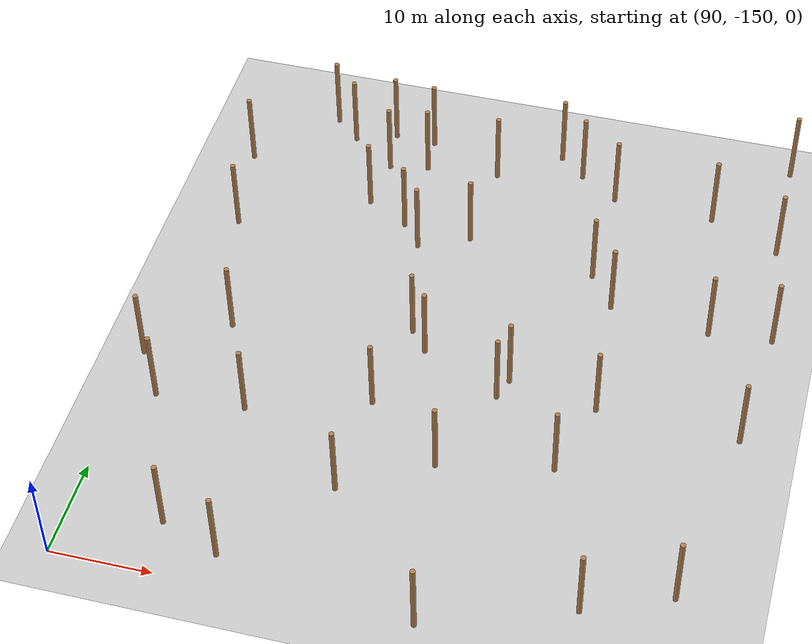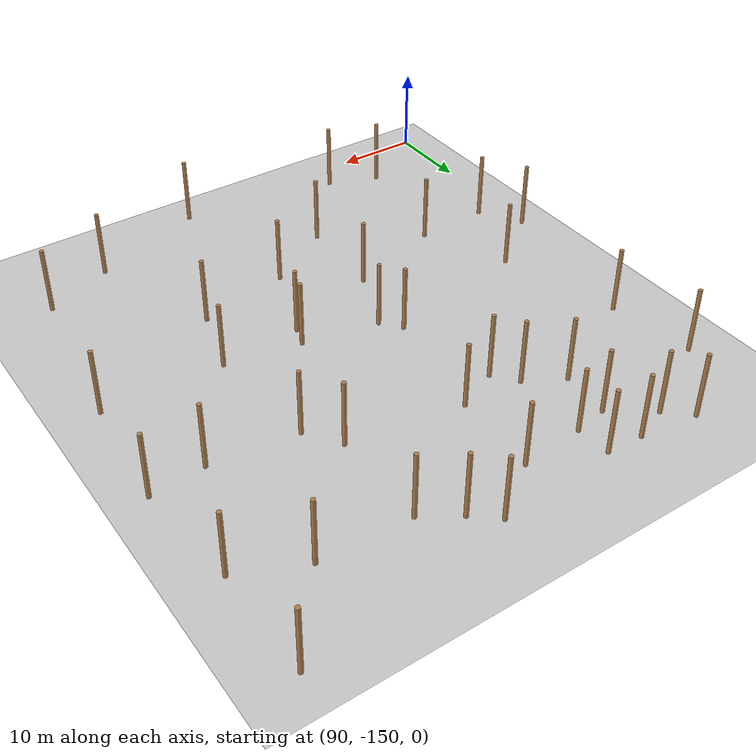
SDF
<sdf version="1.5">
 <world name="padure_tactica">
  <include><uri>model://sun</uri></include>
  <include><uri>model://ground_plane</uri></include>
  <model name="tree_6">
   <static>true</static>
   <pose>143.14 -109.33 4.0 0 0 0</pose>
   <link name="link">
    <collision name="collision">
     <geometry><cylinder><radius>0.25</radius><length>8.0</length></cylinder></geometry>
    </collision>
    <visual name="visual">
     <geometry><cylinder><radius>0.25</radius><length>8.0</length></cylinder></geometry>
     <material>
      <script><uri>file://media/materials/scripts/gazebo.material</uri><name>Gazebo/Wood</name></script>
     </material>
    </visual>
   </link>
  </model>
  <model name="tree_8">
   <static>true</static>
   <pose>147.84 -84.51 4.0 0 0 0</pose>
   <link name="link">
    <collision name="collision">
     <geometry><cylinder><radius>0.25</radius><length>8.0</length></cylinder></geometry>
    </collision>
    <visual name="visual">
     <geometry><cylinder><radius>0.25</radius><length>8.0</length></cylinder></geometry>
     <material>
      <script><uri>file://media/materials/scripts/gazebo.material</uri><name>Gazebo/Wood</name></script>
     </material>
    </visual>
   </link>
  </model>
  <model name="tree_10">
   <static>true</static>
   <pose>133.14 -108.15 4.0 0 0 0</pose>
   <link name="link">
    <collision name="collision">
     <geometry><cylinder><radius>0.25</radius><length>8.0</length></cylinder></geometry>
    </collision>
    <visual name="visual">
     <geometry><cylinder><radius>0.25</radius><length>8.0</length></cylinder></geometry>
     <material>
      <script><uri>file://media/materials/scripts/gazebo.material</uri><name>Gazebo/Wood</name></script>
     </material>
    </visual>
   </link>
  </model>
  <model name="tree_78">
   <static>true</static>
   <pose>109.97 -89.08 4.0 0 0 0</pose>
   <link name="link">
    <collision name="collision">
     <geometry><cylinder><radius>0.25</radius><length>8.0</length></cylinder></geometry>
    </collision>
    <visual name="visual">
     <geometry><cylinder><radius>0.25</radius><length>8.0</length></cylinder></geometry>
     <material>
      <script><uri>file://media/materials/scripts/gazebo.material</uri><name>Gazebo/Wood</name></script>
     </material>
    </visual>
   </link>
  </model>
  <model name="tree_96">
   <static>true</static>
   <pose>90.10 -125.28 4.0 0 0 0</pose>
   <link name="link">
    <collision name="collision">
     <geometry><cylinder><radius>0.25</radius><length>8.0</length></cylinder></geometry>
    </collision>
    <visual name="visual">
     <geometry><cylinder><radius>0.25</radius><length>8.0</length></cylinder></geometry>
     <material>
      <script><uri>file://media/materials/scripts/gazebo.material</uri><name>Gazebo/Wood</name></script>
     </material>
    </visual>
   </link>
  </model>
  <model name="tree_170">
   <static>true</static>
   <pose>145.55 -141.21 4.0 0 0 0</pose>
   <link name="link">
    <collision name="collision">
     <geometry><cylinder><radius>0.25</radius><length>8.0</length></cylinder></geometry>
    </collision>
    <visual name="visual">
     <geometry><cylinder><radius>0.25</radius><length>8.0</length></cylinder></geometry>
     <material>
      <script><uri>file://media/materials/scripts/gazebo.material</uri><name>Gazebo/Wood</name></script>
     </material>
    </visual>
   </link>
  </model>
  <model name="tree_218">
   <static>true</static>
   <pose>125.57 -120.15 4.0 0 0 0</pose>
   <link name="link">
    <collision name="collision">
     <geometry><cylinder><radius>0.25</radius><length>8.0</length></cylinder></geometry>
    </collision>
    <visual name="visual">
     <geometry><cylinder><radius>0.25</radius><length>8.0</length></cylinder></geometry>
     <material>
      <script><uri>file://media/materials/scripts/gazebo.material</uri><name>Gazebo/Wood</name></script>
     </material>
    </visual>
   </link>
  </model>
  <model name="tree_249">
   <static>true</static>
   <pose>140.88 -93.34 4.0 0 0 0</pose>
   <link name="link">
    <collision name="collision">
     <geometry><cylinder><radius>0.25</radius><length>8.0</length></cylinder></geometry>
    </collision>
    <visual name="visual">
     <geometry><cylinder><radius>0.25</radius><length>8.0</length></cylinder></geometry>
     <material>
      <script><uri>file://media/materials/scripts/gazebo.material</uri><name>Gazebo/Wood</name></script>
     </material>
    </visual>
   </link>
  </model>
  <model name="tree_258">
   <static>true</static>
   <pose>148.06 -96.52 4.0 0 0 0</pose>
   <link name="link">
    <collision name="collision">
     <geometry><cylinder><radius>0.25</radius><length>8.0</length></cylinder></geometry>
    </collision>
    <visual name="visual">
     <geometry><cylinder><radius>0.25</radius><length>8.0</length></cylinder></geometry>
     <material>
      <script><uri>file://media/materials/scripts/gazebo.material</uri><name>Gazebo/Wood</name></script>
     </material>
    </visual>
   </link>
  </model>
  <model name="tree_319">
   <static>true</static>
   <pose>112.22 -104.54 4.0 0 0 0</pose>
   <link name="link">
    <collision name="collision">
     <geometry><cylinder><radius>0.25</radius><length>8.0</length></cylinder></geometry>
    </collision>
    <visual name="visual">
     <geometry><cylinder><radius>0.25</radius><length>8.0</length></cylinder></geometry>
     <material>
      <script><uri>file://media/materials/scripts/gazebo.material</uri><name>Gazebo/Wood</name></script>
     </material>
    </visual>
   </link>
  </model>
  <model name="tree_337">
   <static>true</static>
   <pose>93.29 -105.76 4.0 0 0 0</pose>
   <link name="link">
    <collision name="collision">
     <geometry><cylinder><radius>0.25</radius><length>8.0</length></cylinder></geometry>
    </collision>
    <visual name="visual">
     <geometry><cylinder><radius>0.25</radius><length>8.0</length></cylinder></geometry>
     <material>
      <script><uri>file://media/materials/scripts/gazebo.material</uri><name>Gazebo/Wood</name></script>
     </material>
    </visual>
   </link>
  </model>
  <model name="tree_355">
   <static>true</static>
   <pose>134.40 -121.68 4.0 0 0 0</pose>
   <link name="link">
    <collision name="collision">
     <geometry><cylinder><radius>0.25</radius><length>8.0</length></cylinder></geometry>
    </collision>
    <visual name="visual">
     <geometry><cylinder><radius>0.25</radius><length>8.0</length></cylinder></geometry>
     <material>
      <script><uri>file://media/materials/scripts/gazebo.material</uri><name>Gazebo/Wood</name></script>
     </material>
    </visual>
   </link>
  </model>
  <model name="tree_394">
   <static>true</static>
   <pose>104.84 -146.69 4.0 0 0 0</pose>
   <link name="link">
    <collision name="collision">
     <geometry><cylinder><radius>0.25</radius><length>8.0</length></cylinder></geometry>
    </collision>
    <visual name="visual">
     <geometry><cylinder><radius>0.25</radius><length>8.0</length></cylinder></geometry>
     <material>
      <script><uri>file://media/materials/scripts/gazebo.material</uri><name>Gazebo/Wood</name></script>
     </material>
    </visual>
   </link>
  </model>
  <model name="tree_470">
   <static>true</static>
   <pose>101.91 -129.75 4.0 0 0 0</pose>
   <link name="link">
    <collision name="collision">
     <geometry><cylinder><radius>0.25</radius><length>8.0</length></cylinder></geometry>
    </collision>
    <visual name="visual">
     <geometry><cylinder><radius>0.25</radius><length>8.0</length></cylinder></geometry>
     <material>
      <script><uri>file://media/materials/scripts/gazebo.material</uri><name>Gazebo/Wood</name></script>
     </material>
    </visual>
   </link>
  </model>
  <model name="tree_497">
   <static>true</static>
   <pose>149.39 -108.77 4.0 0 0 0</pose>
   <link name="link">
    <collision name="collision">
     <geometry><cylinder><radius>0.25</radius><length>8.0</length></cylinder></geometry>
    </collision>
    <visual name="visual">
     <geometry><cylinder><radius>0.25</radius><length>8.0</length></cylinder></geometry>
     <material>
      <script><uri>file://media/materials/scripts/gazebo.material</uri><name>Gazebo/Wood</name></script>
     </material>
    </visual>
   </link>
  </model>
  <model name="tree_557">
   <static>true</static>
   <pose>106.33 -93.77 4.0 0 0 0</pose>
   <link name="link">
    <collision name="collision">
     <geometry><cylinder><radius>0.25</radius><length>8.0</length></cylinder></geometry>
    </collision>
    <visual name="visual">
     <geometry><cylinder><radius>0.25</radius><length>8.0</length></cylinder></geometry>
     <material>
      <script><uri>file://media/materials/scripts/gazebo.material</uri><name>Gazebo/Wood</name></script>
     </material>
    </visual>
   </link>
  </model>
  <model name="tree_585">
   <static>true</static>
   <pose>123.86 -87.98 4.0 0 0 0</pose>
   <link name="link">
    <collision name="collision">
     <geometry><cylinder><radius>0.25</radius><length>8.0</length></cylinder></geometry>
    </collision>
    <visual name="visual">
     <geometry><cylinder><radius>0.25</radius><length>8.0</length></cylinder></geometry>
     <material>
      <script><uri>file://media/materials/scripts/gazebo.material</uri><name>Gazebo/Wood</name></script>
     </material>
    </visual>
   </link>
  </model>
  <model name="tree_606">
   <static>true</static>
   <pose>114.85 -116.16 4.0 0 0 0</pose>
   <link name="link">
    <collision name="collision">
     <geometry><cylinder><radius>0.25</radius><length>8.0</length></cylinder></geometry>
    </collision>
    <visual name="visual">
     <geometry><cylinder><radius>0.25</radius><length>8.0</length></cylinder></geometry>
     <material>
      <script><uri>file://media/materials/scripts/gazebo.material</uri><name>Gazebo/Wood</name></script>
     </material>
    </visual>
   </link>
  </model>
  <model name="tree_624">
   <static>true</static>
   <pose>98.97 -87.98 4.0 0 0 0</pose>
   <link name="link">
    <collision name="collision">
     <geometry><cylinder><radius>0.25</radius><length>8.0</length></cylinder></geometry>
    </collision>
    <visual name="visual">
     <geometry><cylinder><radius>0.25</radius><length>8.0</length></cylinder></geometry>
     <material>
      <script><uri>file://media/materials/scripts/gazebo.material</uri><name>Gazebo/Wood</name></script>
     </material>
    </visual>
   </link>
  </model>
  <model name="tree_634">
   <static>true</static>
   <pose>105.77 -99.49 4.0 0 0 0</pose>
   <link name="link">
    <collision name="collision">
     <geometry><cylinder><radius>0.25</radius><length>8.0</length></cylinder></geometry>
    </collision>
    <visual name="visual">
     <geometry><cylinder><radius>0.25</radius><length>8.0</length></cylinder></geometry>
     <material>
      <script><uri>file://media/materials/scripts/gazebo.material</uri><name>Gazebo/Wood</name></script>
     </material>
    </visual>
   </link>
  </model>
  <model name="tree_662">
   <static>true</static>
   <pose>126.54 -90.28 4.0 0 0 0</pose>
   <link name="link">
    <collision name="collision">
     <geometry><cylinder><radius>0.25</radius><length>8.0</length></cylinder></geometry>
    </collision>
    <visual name="visual">
     <geometry><cylinder><radius>0.25</radius><length>8.0</length></cylinder></geometry>
     <material>
      <script><uri>file://media/materials/scripts/gazebo.material</uri><name>Gazebo/Wood</name></script>
     </material>
    </visual>
   </link>
  </model>
  <model name="tree_671">
   <static>true</static>
   <pose>98.98 -144.41 4.0 0 0 0</pose>
   <link name="link">
    <collision name="collision">
     <geometry><cylinder><radius>0.25</radius><length>8.0</length></cylinder></geometry>
    </collision>
    <visual name="visual">
     <geometry><cylinder><radius>0.25</radius><length>8.0</length></cylinder></geometry>
     <material>
      <script><uri>file://media/materials/scripts/gazebo.material</uri><name>Gazebo/Wood</name></script>
     </material>
    </visual>
   </link>
  </model>
  <model name="tree_679">
   <static>true</static>
   <pose>110.27 -93.00 4.0 0 0 0</pose>
   <link name="link">
    <collision name="collision">
     <geometry><cylinder><radius>0.25</radius><length>8.0</length></cylinder></geometry>
    </collision>
    <visual name="visual">
     <geometry><cylinder><radius>0.25</radius><length>8.0</length></cylinder></geometry>
     <material>
      <script><uri>file://media/materials/scripts/gazebo.material</uri><name>Gazebo/Wood</name></script>
     </material>
    </visual>
   </link>
  </model>
  <model name="tree_703">
   <static>true</static>
   <pose>121.26 -131.96 4.0 0 0 0</pose>
   <link name="link">
    <collision name="collision">
     <geometry><cylinder><radius>0.25</radius><length>8.0</length></cylinder></geometry>
    </collision>
    <visual name="visual">
     <geometry><cylinder><radius>0.25</radius><length>8.0</length></cylinder></geometry>
     <material>
      <script><uri>file://media/materials/scripts/gazebo.material</uri><name>Gazebo/Wood</name></script>
     </material>
    </visual>
   </link>
  </model>
  <model name="tree_743">
   <static>true</static>
   <pose>101.61 -90.43 4.0 0 0 0</pose>
   <link name="link">
    <collision name="collision">
     <geometry><cylinder><radius>0.25</radius><length>8.0</length></cylinder></geometry>
    </collision>
    <visual name="visual">
     <geometry><cylinder><radius>0.25</radius><length>8.0</length></cylinder></geometry>
     <material>
      <script><uri>file://media/materials/scripts/gazebo.material</uri><name>Gazebo/Wood</name></script>
     </material>
    </visual>
   </link>
  </model>
  <model name="tree_799">
   <static>true</static>
   <pose>130.49 -104.38 4.0 0 0 0</pose>
   <link name="link">
    <collision name="collision">
     <geometry><cylinder><radius>0.25</radius><length>8.0</length></cylinder></geometry>
    </collision>
    <visual name="visual">
     <geometry><cylinder><radius>0.25</radius><length>8.0</length></cylinder></geometry>
     <material>
      <script><uri>file://media/materials/scripts/gazebo.material</uri><name>Gazebo/Wood</name></script>
     </material>
    </visual>
   </link>
  </model>
  <model name="tree_846">
   <static>true</static>
   <pose>137.60 -144.61 4.0 0 0 0</pose>
   <link name="link">
    <collision name="collision">
     <geometry><cylinder><radius>0.25</radius><length>8.0</length></cylinder></geometry>
    </collision>
    <visual name="visual">
     <geometry><cylinder><radius>0.25</radius><length>8.0</length></cylinder></geometry>
     <material>
      <script><uri>file://media/materials/scripts/gazebo.material</uri><name>Gazebo/Wood</name></script>
     </material>
    </visual>
   </link>
  </model>
  <model name="tree_861">
   <static>true</static>
   <pose>113.02 -136.87 4.0 0 0 0</pose>
   <link name="link">
    <collision name="collision">
     <geometry><cylinder><radius>0.25</radius><length>8.0</length></cylinder></geometry>
    </collision>
    <visual name="visual">
     <geometry><cylinder><radius>0.25</radius><length>8.0</length></cylinder></geometry>
     <material>
      <script><uri>file://media/materials/scripts/gazebo.material</uri><name>Gazebo/Wood</name></script>
     </material>
    </visual>
   </link>
  </model>
  <model name="tree_889">
   <static>true</static>
   <pose>132.11 -129.68 4.0 0 0 0</pose>
   <link name="link">
    <collision name="collision">
     <geometry><cylinder><radius>0.25</radius><length>8.0</length></cylinder></geometry>
    </collision>
    <visual name="visual">
     <geometry><cylinder><radius>0.25</radius><length>8.0</length></cylinder></geometry>
     <material>
      <script><uri>file://media/materials/scripts/gazebo.material</uri><name>Gazebo/Wood</name></script>
     </material>
    </visual>
   </link>
  </model>
  <model name="tree_919">
   <static>true</static>
   <pose>117.21 -102.27 4.0 0 0 0</pose>
   <link name="link">
    <collision name="collision">
     <geometry><cylinder><radius>0.25</radius><length>8.0</length></cylinder></geometry>
    </collision>
    <visual name="visual">
     <geometry><cylinder><radius>0.25</radius><length>8.0</length></cylinder></geometry>
     <material>
      <script><uri>file://media/materials/scripts/gazebo.material</uri><name>Gazebo/Wood</name></script>
     </material>
    </visual>
   </link>
  </model>
  <model name="tree_977">
   <static>true</static>
   <pose>148.26 -122.09 4.0 0 0 0</pose>
   <link name="link">
    <collision name="collision">
     <geometry><cylinder><radius>0.25</radius><length>8.0</length></cylinder></geometry>
    </collision>
    <visual name="visual">
     <geometry><cylinder><radius>0.25</radius><length>8.0</length></cylinder></geometry>
     <material>
      <script><uri>file://media/materials/scripts/gazebo.material</uri><name>Gazebo/Wood</name></script>
     </material>
    </visual>
   </link>
  </model>
  <model name="tree_1019">
   <static>true</static>
   <pose>123.95 -149.55 4.0 0 0 0</pose>
   <link name="link">
    <collision name="collision">
     <geometry><cylinder><radius>0.25</radius><length>8.0</length></cylinder></geometry>
    </collision>
    <visual name="visual">
     <geometry><cylinder><radius>0.25</radius><length>8.0</length></cylinder></geometry>
     <material>
      <script><uri>file://media/materials/scripts/gazebo.material</uri><name>Gazebo/Wood</name></script>
     </material>
    </visual>
   </link>
  </model>
  <model name="tree_1034">
   <static>true</static>
   <pose>124.83 -122.41 4.0 0 0 0</pose>
   <link name="link">
    <collision name="collision">
     <geometry><cylinder><radius>0.25</radius><length>8.0</length></cylinder></geometry>
    </collision>
    <visual name="visual">
     <geometry><cylinder><radius>0.25</radius><length>8.0</length></cylinder></geometry>
     <material>
      <script><uri>file://media/materials/scripts/gazebo.material</uri><name>Gazebo/Wood</name></script>
     </material>
    </visual>
   </link>
  </model>
  <model name="tree_1039">
   <static>true</static>
   <pose>110.14 -101.91 4.0 0 0 0</pose>
   <link name="link">
    <collision name="collision">
     <geometry><cylinder><radius>0.25</radius><length>8.0</length></cylinder></geometry>
    </collision>
    <visual name="visual">
     <geometry><cylinder><radius>0.25</radius><length>8.0</length></cylinder></geometry>
     <material>
      <script><uri>file://media/materials/scripts/gazebo.material</uri><name>Gazebo/Wood</name></script>
     </material>
    </visual>
   </link>
  </model>
  <model name="tree_1046">
   <static>true</static>
   <pose>113.50 -126.03 4.0 0 0 0</pose>
   <link name="link">
    <collision name="collision">
     <geometry><cylinder><radius>0.25</radius><length>8.0</length></cylinder></geometry>
    </collision>
    <visual name="visual">
     <geometry><cylinder><radius>0.25</radius><length>8.0</length></cylinder></geometry>
     <material>
      <script><uri>file://media/materials/scripts/gazebo.material</uri><name>Gazebo/Wood</name></script>
     </material>
    </visual>
   </link>
  </model>
  <model name="tree_1055">
   <static>true</static>
   <pose>97.34 -119.78 4.0 0 0 0</pose>
   <link name="link">
    <collision name="collision">
     <geometry><cylinder><radius>0.25</radius><length>8.0</length></cylinder></geometry>
    </collision>
    <visual name="visual">
     <geometry><cylinder><radius>0.25</radius><length>8.0</length></cylinder></geometry>
     <material>
      <script><uri>file://media/materials/scripts/gazebo.material</uri><name>Gazebo/Wood</name></script>
     </material>
    </visual>
   </link>
  </model>
  <model name="tree_1090">
   <static>true</static>
   <pose>105.72 -88.88 4.0 0 0 0</pose>
   <link name="link">
    <collision name="collision">
     <geometry><cylinder><radius>0.25</radius><length>8.0</length></cylinder></geometry>
    </collision>
    <visual name="visual">
     <geometry><cylinder><radius>0.25</radius><length>8.0</length></cylinder></geometry>
     <material>
      <script><uri>file://media/materials/scripts/gazebo.material</uri><name>Gazebo/Wood</name></script>
     </material>
    </visual>
   </link>
  </model>
  <model name="tree_1122">
   <static>true</static>
   <pose>116.67 -118.40 4.0 0 0 0</pose>
   <link name="link">
    <collision name="collision">
     <geometry><cylinder><radius>0.25</radius><length>8.0</length></cylinder></geometry>
    </collision>
    <visual name="visual">
     <geometry><cylinder><radius>0.25</radius><length>8.0</length></cylinder></geometry>
     <material>
      <script><uri>file://media/materials/scripts/gazebo.material</uri><name>Gazebo/Wood</name></script>
     </material>
    </visual>
   </link>
  </model>
  <model name="tree_1145">
   <static>true</static>
   <pose>117.71 -92.31 4.0 0 0 0</pose>
   <link name="link">
    <collision name="collision">
     <geometry><cylinder><radius>0.25</radius><length>8.0</length></cylinder></geometry>
    </collision>
    <visual name="visual">
     <geometry><cylinder><radius>0.25</radius><length>8.0</length></cylinder></geometry>
     <material>
      <script><uri>file://media/materials/scripts/gazebo.material</uri><name>Gazebo/Wood</name></script>
     </material>
    </visual>
   </link>
  </model>
  <model name="tree_1165">
   <static>true</static>
   <pose>130.51 -92.85 4.0 0 0 0</pose>
   <link name="link">
    <collision name="collision">
     <geometry><cylinder><radius>0.25</radius><length>8.0</length></cylinder></geometry>
    </collision>
    <visual name="visual">
     <geometry><cylinder><radius>0.25</radius><length>8.0</length></cylinder></geometry>
     <material>
      <script><uri>file://media/materials/scripts/gazebo.material</uri><name>Gazebo/Wood</name></script>
     </material>
    </visual>
   </link>
  </model>
  <model name="tree_1183">
   <static>true</static>
   <pose>91.75 -95.83 4.0 0 0 0</pose>
   <link name="link">
    <collision name="collision">
     <geometry><cylinder><radius>0.25</radius><length>8.0</length></cylinder></geometry>
    </collision>
    <visual name="visual">
     <geometry><cylinder><radius>0.25</radius><length>8.0</length></cylinder></geometry>
     <material>
      <script><uri>file://media/materials/scripts/gazebo.material</uri><name>Gazebo/Wood</name></script>
     </material>
    </visual>
   </link>
  </model>
  <model name="tree_1184">
   <static>true</static>
   <pose>93.10 -130.14 4.0 0 0 0</pose>
   <link name="link">
    <collision name="collision">
     <geometry><cylinder><radius>0.25</radius><length>8.0</length></cylinder></geometry>
    </collision>
    <visual name="visual">
     <geometry><cylinder><radius>0.25</radius><length>8.0</length></cylinder></geometry>
     <material>
      <script><uri>file://media/materials/scripts/gazebo.material</uri><name>Gazebo/Wood</name></script>
     </material>
    </visual>
   </link>
  </model>
 </world>
</sdf>
